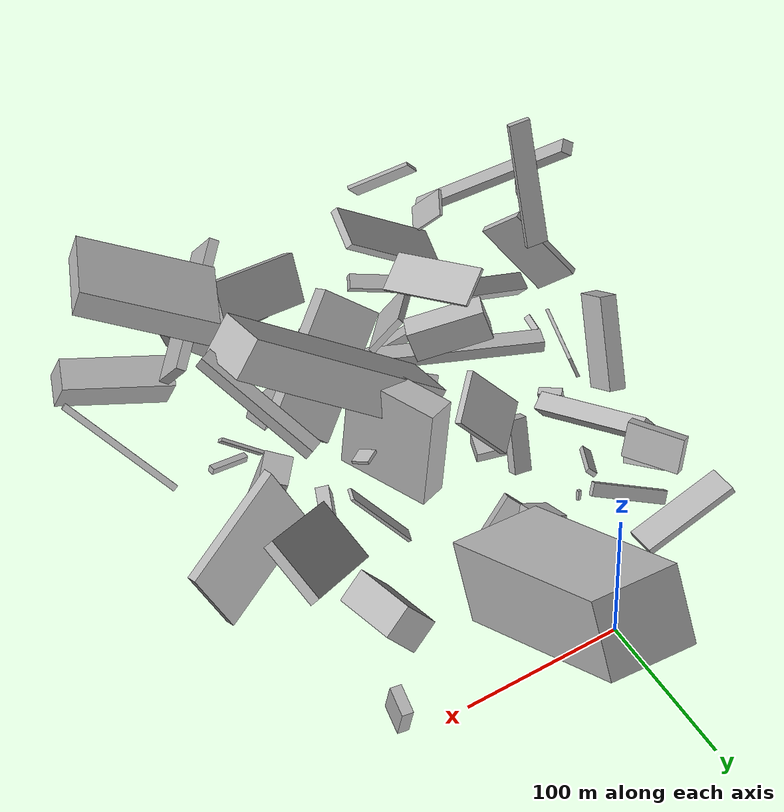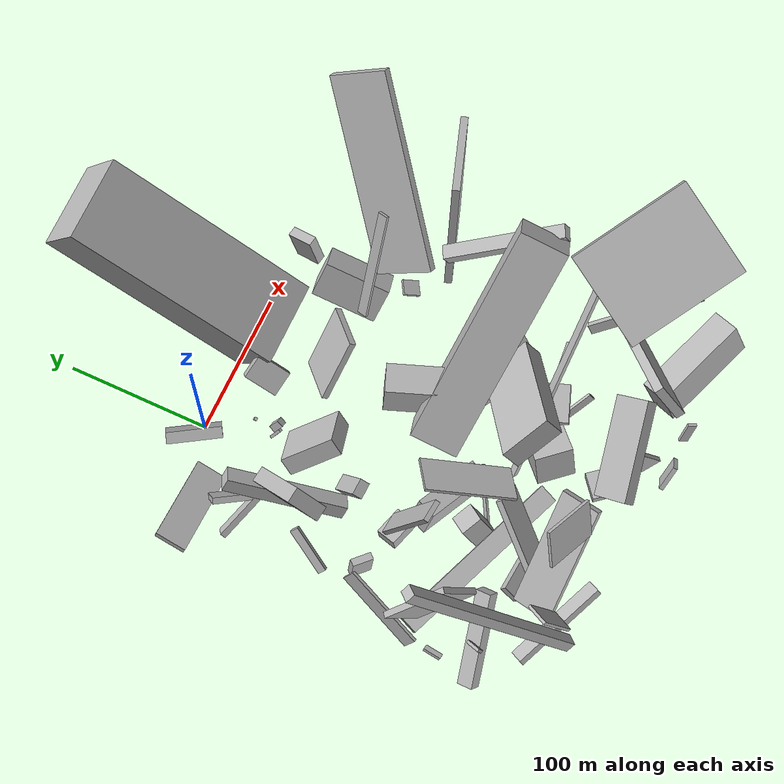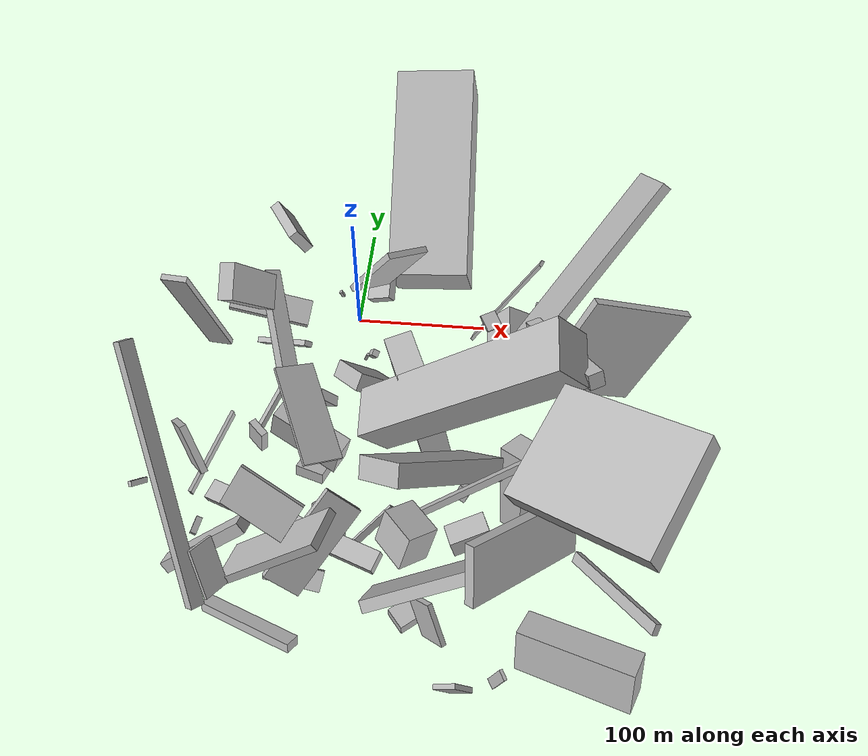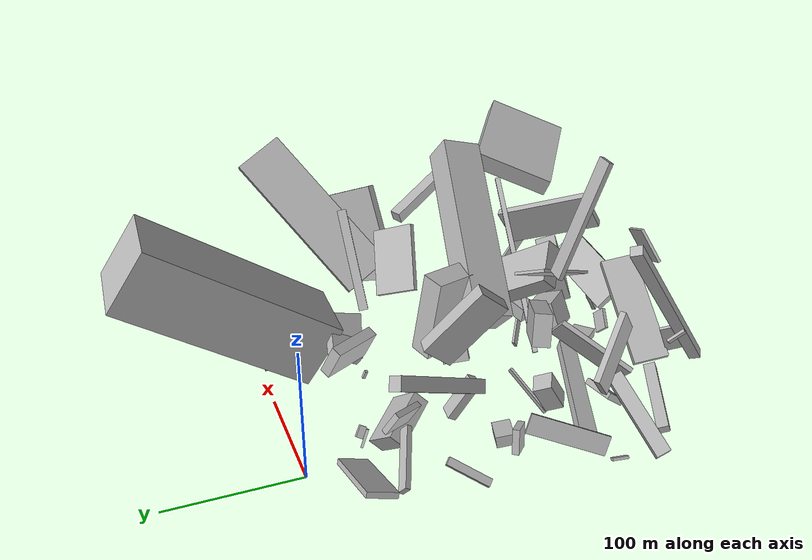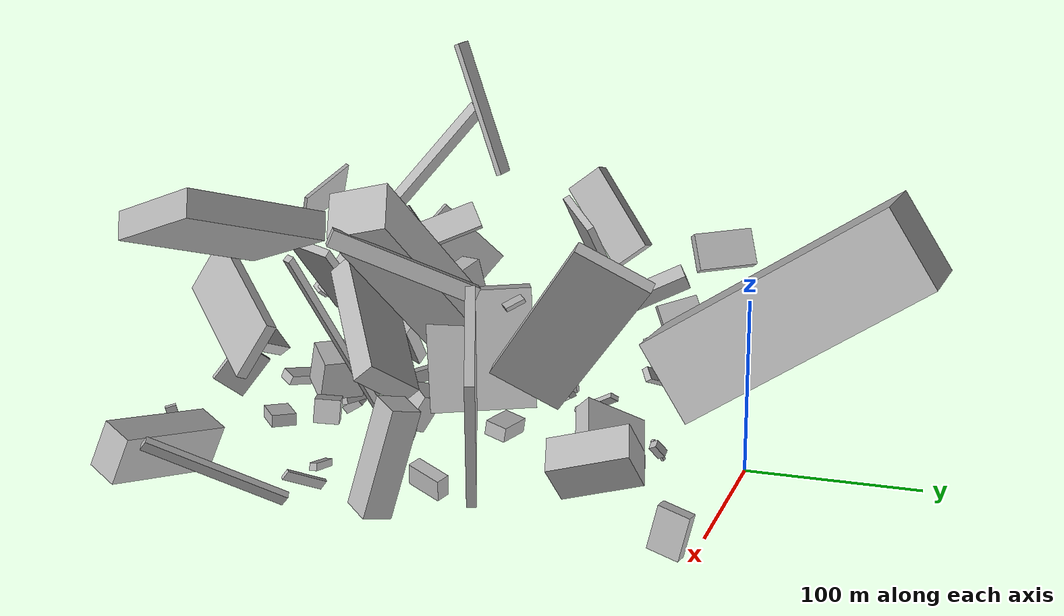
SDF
<sdf version="1.6">
 <world name="default">
  <model name="building_1">
   <static>0</static>
   <pose>-5.42810275641664 -239.7220187616653 85.97157220256467 1.3218992795124298 0.7941853755900098 -0.3940899181862939</pose>
   <link name="link">
    <gravity>0</gravity>
    <pose>0 0 13.0 0 0 0</pose>
    <collision name="collision"><geometry><box><size>5 81 26</size></box></geometry></collision>
    <visual name="visual">
     <cast_shadows>0</cast_shadows>
     <geometry><box><size>5 81 26</size></box></geometry>
     <material>
      <script>
       <uri>model://HANNAS_wall/materials/scripts</uri>
       <uri>model://HANNAS_wall/materials/textures</uri>
       <name>vrc/HANNAS_wall</name>
      </script>
     </material>
    </visual>
   </link>
  </model>
  <model name="building_9">
   <static>0</static>
   <pose>33.84589902313799 -151.89104089429046 75.68004075260461 0.3471192922953467 0.7987878249270718 0.28971736532921855</pose>
   <link name="link">
    <gravity>0</gravity>
    <pose>0 0 75.0 0 0 0</pose>
    <collision name="collision"><geometry><box><size>26 32 150</size></box></geometry></collision>
    <visual name="visual">
     <cast_shadows>0</cast_shadows>
     <geometry><box><size>26 32 150</size></box></geometry>
     <material>
      <script>
       <uri>model://HANNAS_wall/materials/scripts</uri>
       <uri>model://HANNAS_wall/materials/textures</uri>
       <name>vrc/HANNAS_wall</name>
      </script>
     </material>
    </visual>
   </link>
  </model>
  <model name="building_10">
   <static>0</static>
   <pose>166.26630641491323 -104.6556512947187 59.05843683317994 -0.4021579293587372 0.0015538447184594562 -1.2440121882095712</pose>
   <link name="link">
    <gravity>0</gravity>
    <pose>0 0 39.5 0 0 0</pose>
    <collision name="collision"><geometry><box><size>5 73 79</size></box></geometry></collision>
    <visual name="visual">
     <cast_shadows>0</cast_shadows>
     <geometry><box><size>5 73 79</size></box></geometry>
     <material>
      <script>
       <uri>model://HANNAS_wall/materials/scripts</uri>
       <uri>model://HANNAS_wall/materials/textures</uri>
       <name>vrc/HANNAS_wall</name>
      </script>
     </material>
    </visual>
   </link>
  </model>
  <model name="building_17">
   <static>0</static>
   <pose>59.295247222532026 -27.041184664306968 75.38466579360201 0.14372766113227464 -0.9816911505070811 -1.706182812326678</pose>
   <link name="link">
    <gravity>0</gravity>
    <pose>0 0 75.0 0 0 0</pose>
    <collision name="collision"><geometry><box><size>48 55 150</size></box></geometry></collision>
    <visual name="visual">
     <cast_shadows>0</cast_shadows>
     <geometry><box><size>48 55 150</size></box></geometry>
     <material>
      <script>
       <uri>model://HANNAS_wall/materials/scripts</uri>
       <uri>model://HANNAS_wall/materials/textures</uri>
       <name>vrc/HANNAS_wall</name>
      </script>
     </material>
    </visual>
   </link>
  </model>
  <model name="building_22">
   <static>0</static>
   <pose>165.29780434071338 -273.25493520363113 38.56952976451891 0.4997085359125602 1.1886435750374411 -1.4784130958595931</pose>
   <link name="link">
    <gravity>0</gravity>
    <pose>0 0 9.5 0 0 0</pose>
    <collision name="collision"><geometry><box><size>27 67 19</size></box></geometry></collision>
    <visual name="visual">
     <cast_shadows>0</cast_shadows>
     <geometry><box><size>27 67 19</size></box></geometry>
     <material>
      <script>
       <uri>model://HANNAS_wall/materials/scripts</uri>
       <uri>model://HANNAS_wall/materials/textures</uri>
       <name>vrc/HANNAS_wall</name>
      </script>
     </material>
    </visual>
   </link>
  </model>
  <model name="building_23">
   <static>0</static>
   <pose>93.50293925595642 -206.23690654008107 89.42540538922523 2.253204658741233 0.19887257419578286 1.2426885917443982</pose>
   <link name="link">
    <gravity>0</gravity>
    <pose>0 0 2.0 0 0 0</pose>
    <collision name="collision"><geometry><box><size>4 150 4</size></box></geometry></collision>
    <visual name="visual">
     <cast_shadows>0</cast_shadows>
     <geometry><box><size>4 150 4</size></box></geometry>
     <material>
      <script>
       <uri>model://HANNAS_wall/materials/scripts</uri>
       <uri>model://HANNAS_wall/materials/textures</uri>
       <name>vrc/HANNAS_wall</name>
      </script>
     </material>
    </visual>
   </link>
  </model>
  <model name="building_30">
   <static>0</static>
   <pose>-51.628188610088806 -85.52173993928845 135.2359919907667 -2.8149377950367485 -0.8573168729308654 -1.9750568537472974</pose>
   <link name="link">
    <gravity>0</gravity>
    <pose>0 0 11.5 0 0 0</pose>
    <collision name="collision"><geometry><box><size>54 10 23</size></box></geometry></collision>
    <visual name="visual">
     <cast_shadows>0</cast_shadows>
     <geometry><box><size>54 10 23</size></box></geometry>
     <material>
      <script>
       <uri>model://HANNAS_wall/materials/scripts</uri>
       <uri>model://HANNAS_wall/materials/textures</uri>
       <name>vrc/HANNAS_wall</name>
      </script>
     </material>
    </visual>
   </link>
  </model>
  <model name="building_41">
   <static>0</static>
   <pose>-16.573700804806165 -211.18111668127642 28.42816205441622 -0.2508484192820783 1.3294683724410303 0.9418321327773401</pose>
   <link name="link">
    <gravity>0</gravity>
    <pose>0 0 6.5 0 0 0</pose>
    <collision name="collision"><geometry><box><size>7 124 13</size></box></geometry></collision>
    <visual name="visual">
     <cast_shadows>0</cast_shadows>
     <geometry><box><size>7 124 13</size></box></geometry>
     <material>
      <script>
       <uri>model://HANNAS_wall/materials/scripts</uri>
       <uri>model://HANNAS_wall/materials/textures</uri>
       <name>vrc/HANNAS_wall</name>
      </script>
     </material>
    </visual>
   </link>
  </model>
  <model name="building_44">
   <static>0</static>
   <pose>65.28228357495722 -133.36924564193194 45.98189960271765 -0.17454358389254931 -0.036807849850491584 1.942890977357294</pose>
   <link name="link">
    <gravity>0</gravity>
    <pose>0 0 33.0 0 0 0</pose>
    <collision name="collision"><geometry><box><size>58 18 66</size></box></geometry></collision>
    <visual name="visual">
     <cast_shadows>0</cast_shadows>
     <geometry><box><size>58 18 66</size></box></geometry>
     <material>
      <script>
       <uri>model://HANNAS_wall/materials/scripts</uri>
       <uri>model://HANNAS_wall/materials/textures</uri>
       <name>vrc/HANNAS_wall</name>
      </script>
     </material>
    </visual>
   </link>
  </model>
  <model name="building_51">
   <static>0</static>
   <pose>-62.80150090943144 -35.108215530397416 35.73823834480329 1.2864220787834153 -0.27170431004789664 -3.119014227257547</pose>
   <link name="link">
    <gravity>0</gravity>
    <pose>0 0 10.5 0 0 0</pose>
    <collision name="collision"><geometry><box><size>60 4 21</size></box></geometry></collision>
    <visual name="visual">
     <cast_shadows>0</cast_shadows>
     <geometry><box><size>60 4 21</size></box></geometry>
     <material>
      <script>
       <uri>model://HANNAS_wall/materials/scripts</uri>
       <uri>model://HANNAS_wall/materials/textures</uri>
       <name>vrc/HANNAS_wall</name>
      </script>
     </material>
    </visual>
   </link>
  </model>
  <model name="building_53">
   <static>0</static>
   <pose>134.84612491259455 -160.10815783810872 34.6635390487251 1.4158742561633624 -0.22493966590599784 -0.703948774160974</pose>
   <link name="link">
    <gravity>0</gravity>
    <pose>0 0 9.5 0 0 0</pose>
    <collision name="collision"><geometry><box><size>17 63 19</size></box></geometry></collision>
    <visual name="visual">
     <cast_shadows>0</cast_shadows>
     <geometry><box><size>17 63 19</size></box></geometry>
     <material>
      <script>
       <uri>model://HANNAS_wall/materials/scripts</uri>
       <uri>model://HANNAS_wall/materials/textures</uri>
       <name>vrc/HANNAS_wall</name>
      </script>
     </material>
    </visual>
   </link>
  </model>
  <model name="building_59">
   <static>0</static>
   <pose>-46.795529385791674 -58.26615661997201 32.13460712737607 0.6069768328617062 -0.8266439071850114 -2.428429025390064</pose>
   <link name="link">
    <gravity>0</gravity>
    <pose>0 0 2.0 0 0 0</pose>
    <collision name="collision"><geometry><box><size>8 47 4</size></box></geometry></collision>
    <visual name="visual">
     <cast_shadows>0</cast_shadows>
     <geometry><box><size>8 47 4</size></box></geometry>
     <material>
      <script>
       <uri>model://HANNAS_wall/materials/scripts</uri>
       <uri>model://HANNAS_wall/materials/textures</uri>
       <name>vrc/HANNAS_wall</name>
      </script>
     </material>
    </visual>
   </link>
  </model>
  <model name="building_60">
   <static>0</static>
   <pose>-55.246284490398345 -52.67597682796404 70.52888772277947 1.0408543811598965 -0.18750298344435254 2.1800897783020736</pose>
   <link name="link">
    <gravity>0</gravity>
    <pose>0 0 2.0 0 0 0</pose>
    <collision name="collision"><geometry><box><size>25 17 4</size></box></geometry></collision>
    <visual name="visual">
     <cast_shadows>0</cast_shadows>
     <geometry><box><size>25 17 4</size></box></geometry>
     <material>
      <script>
       <uri>model://HANNAS_wall/materials/scripts</uri>
       <uri>model://HANNAS_wall/materials/textures</uri>
       <name>vrc/HANNAS_wall</name>
      </script>
     </material>
    </visual>
   </link>
  </model>
  <model name="building_63">
   <static>0</static>
   <pose>129.72382476370478 -216.8122920937503 152.89608224947602 -1.2462023191349325 0.36279655640454006 -2.060488606820153</pose>
   <link name="link">
    <gravity>0</gravity>
    <pose>0 0 40.5 0 0 0</pose>
    <collision name="collision"><geometry><box><size>65 15 81</size></box></geometry></collision>
    <visual name="visual">
     <cast_shadows>0</cast_shadows>
     <geometry><box><size>65 15 81</size></box></geometry>
     <material>
      <script>
       <uri>model://HANNAS_wall/materials/scripts</uri>
       <uri>model://HANNAS_wall/materials/textures</uri>
       <name>vrc/HANNAS_wall</name>
      </script>
     </material>
    </visual>
   </link>
  </model>
  <model name="building_68">
   <static>0</static>
   <pose>133.68899683344443 -201.15921752342024 28.12577484494996 0.25896905218363564 0.0042694306786999646 -1.496652786326828</pose>
   <link name="link">
    <gravity>0</gravity>
    <pose>0 0 2.0 0 0 0</pose>
    <collision name="collision"><geometry><box><size>4 25 4</size></box></geometry></collision>
    <visual name="visual">
     <cast_shadows>0</cast_shadows>
     <geometry><box><size>4 25 4</size></box></geometry>
     <material>
      <script>
       <uri>model://HANNAS_wall/materials/scripts</uri>
       <uri>model://HANNAS_wall/materials/textures</uri>
       <name>vrc/HANNAS_wall</name>
      </script>
     </material>
    </visual>
   </link>
  </model>
  <model name="building_74">
   <static>0</static>
   <pose>5.640465864170977 -228.60789635987018 51.6064259739527 2.228034573761285 0.5392966152699268 -2.2523121590061224</pose>
   <link name="link">
    <gravity>0</gravity>
    <pose>0 0 2.0 0 0 0</pose>
    <collision name="collision"><geometry><box><size>63 26 4</size></box></geometry></collision>
    <visual name="visual">
     <cast_shadows>0</cast_shadows>
     <geometry><box><size>63 26 4</size></box></geometry>
     <material>
      <script>
       <uri>model://HANNAS_wall/materials/scripts</uri>
       <uri>model://HANNAS_wall/materials/textures</uri>
       <name>vrc/HANNAS_wall</name>
      </script>
     </material>
    </visual>
   </link>
  </model>
  <model name="building_77">
   <static>0</static>
   <pose>-71.95500102650558 -236.8877465087458 124.16990555256365 -2.0856577003965104 0.8538065257584017 -1.15359892929485</pose>
   <link name="link">
    <gravity>0</gravity>
    <pose>0 0 4.0 0 0 0</pose>
    <collision name="collision"><geometry><box><size>150 7 8</size></box></geometry></collision>
    <visual name="visual">
     <cast_shadows>0</cast_shadows>
     <geometry><box><size>150 7 8</size></box></geometry>
     <material>
      <script>
       <uri>model://HANNAS_wall/materials/scripts</uri>
       <uri>model://HANNAS_wall/materials/textures</uri>
       <name>vrc/HANNAS_wall</name>
      </script>
     </material>
    </visual>
   </link>
  </model>
  <model name="building_83">
   <static>0</static>
   <pose>144.37211664484997 -8.852210711497163 19.963995743885146 -1.6201742115327749 -1.3308006144434115 1.4523889853108385</pose>
   <link name="link">
    <gravity>0</gravity>
    <pose>0 0 3.5 0 0 0</pose>
    <collision name="collision"><geometry><box><size>25 18 7</size></box></geometry></collision>
    <visual name="visual">
     <cast_shadows>0</cast_shadows>
     <geometry><box><size>25 18 7</size></box></geometry>
     <material>
      <script>
       <uri>model://HANNAS_wall/materials/scripts</uri>
       <uri>model://HANNAS_wall/materials/textures</uri>
       <name>vrc/HANNAS_wall</name>
      </script>
     </material>
    </visual>
   </link>
  </model>
  <model name="building_84">
   <static>0</static>
   <pose>167.56915446579004 -72.87925936802202 137.47755380984043 -2.2625887857645353 -0.7304349838267488 0.7323418659169579</pose>
   <link name="link">
    <gravity>0</gravity>
    <pose>0 0 20.0 0 0 0</pose>
    <collision name="collision"><geometry><box><size>134 6 40</size></box></geometry></collision>
    <visual name="visual">
     <cast_shadows>0</cast_shadows>
     <geometry><box><size>134 6 40</size></box></geometry>
     <material>
      <script>
       <uri>model://HANNAS_wall/materials/scripts</uri>
       <uri>model://HANNAS_wall/materials/textures</uri>
       <name>vrc/HANNAS_wall</name>
      </script>
     </material>
    </visual>
   </link>
  </model>
  <model name="building_87">
   <static>0</static>
   <pose>52.7240470971118 -227.20085016604116 61.086982777157814 -1.9218601484160864 -0.03413095259586417 -0.8572102128023299</pose>
   <link name="link">
    <gravity>0</gravity>
    <pose>0 0 10.5 0 0 0</pose>
    <collision name="collision"><geometry><box><size>25 25 21</size></box></geometry></collision>
    <visual name="visual">
     <cast_shadows>0</cast_shadows>
     <geometry><box><size>25 25 21</size></box></geometry>
     <material>
      <script>
       <uri>model://HANNAS_wall/materials/scripts</uri>
       <uri>model://HANNAS_wall/materials/textures</uri>
       <name>vrc/HANNAS_wall</name>
      </script>
     </material>
    </visual>
   </link>
  </model>
  <model name="building_93">
   <static>0</static>
   <pose>23.464314734465308 -77.12757741077758 118.98054540045162 0.40598590807766927 -0.49052541676882766 2.12676835691638</pose>
   <link name="link">
    <gravity>0</gravity>
    <pose>0 0 23.0 0 0 0</pose>
    <collision name="collision"><geometry><box><size>4 31 46</size></box></geometry></collision>
    <visual name="visual">
     <cast_shadows>0</cast_shadows>
     <geometry><box><size>4 31 46</size></box></geometry>
     <material>
      <script>
       <uri>model://HANNAS_wall/materials/scripts</uri>
       <uri>model://HANNAS_wall/materials/textures</uri>
       <name>vrc/HANNAS_wall</name>
      </script>
     </material>
    </visual>
   </link>
  </model>
  <model name="building_98">
   <static>0</static>
   <pose>110.47869796093084 -56.34746817158542 49.34578033671849 2.179394420632986 -0.26269679675054514 1.6451453191750272</pose>
   <link name="link">
    <gravity>0</gravity>
    <pose>0 0 10.5 0 0 0</pose>
    <collision name="collision"><geometry><box><size>45 26 21</size></box></geometry></collision>
    <visual name="visual">
     <cast_shadows>0</cast_shadows>
     <geometry><box><size>45 26 21</size></box></geometry>
     <material>
      <script>
       <uri>model://HANNAS_wall/materials/scripts</uri>
       <uri>model://HANNAS_wall/materials/textures</uri>
       <name>vrc/HANNAS_wall</name>
      </script>
     </material>
    </visual>
   </link>
  </model>
  <model name="building_101">
   <static>0</static>
   <pose>95.0139971917725 -205.25637472967003 46.90316336103717 1.472308586646145 -0.23810599112206576 0.35837256414539526</pose>
   <link name="link">
    <gravity>0</gravity>
    <pose>0 0 7.0 0 0 0</pose>
    <collision name="collision"><geometry><box><size>25 13 14</size></box></geometry></collision>
    <visual name="visual">
     <cast_shadows>0</cast_shadows>
     <geometry><box><size>25 13 14</size></box></geometry>
     <material>
      <script>
       <uri>model://HANNAS_wall/materials/scripts</uri>
       <uri>model://HANNAS_wall/materials/textures</uri>
       <name>vrc/HANNAS_wall</name>
      </script>
     </material>
    </visual>
   </link>
  </model>
  <model name="building_102">
   <static>0</static>
   <pose>73.6452524552631 -187.98999623571717 92.17129389709018 -2.4474620504610898 -0.5422564809757422 -2.5794935849217717</pose>
   <link name="link">
    <gravity>0</gravity>
    <pose>0 0 7.0 0 0 0</pose>
    <collision name="collision"><geometry><box><size>80 36 14</size></box></geometry></collision>
    <visual name="visual">
     <cast_shadows>0</cast_shadows>
     <geometry><box><size>80 36 14</size></box></geometry>
     <material>
      <script>
       <uri>model://HANNAS_wall/materials/scripts</uri>
       <uri>model://HANNAS_wall/materials/textures</uri>
       <name>vrc/HANNAS_wall</name>
      </script>
     </material>
    </visual>
   </link>
  </model>
  <model name="building_110">
   <static>0</static>
   <pose>-62.884734842943516 -202.9301692621457 85.78287365966777 0.7787649702892605 0.03861047882581604 -2.496929398252908</pose>
   <link name="link">
    <gravity>0</gravity>
    <pose>0 0 14.5 0 0 0</pose>
    <collision name="collision"><geometry><box><size>4 50 29</size></box></geometry></collision>
    <visual name="visual">
     <cast_shadows>0</cast_shadows>
     <geometry><box><size>4 50 29</size></box></geometry>
     <material>
      <script>
       <uri>model://HANNAS_wall/materials/scripts</uri>
       <uri>model://HANNAS_wall/materials/textures</uri>
       <name>vrc/HANNAS_wall</name>
      </script>
     </material>
    </visual>
   </link>
  </model>
  <model name="building_113">
   <static>0</static>
   <pose>3.1911797071757046 -78.28427346795529 26.660849612072262 2.2844929568061874 0.4877137139233096 2.237884223654354</pose>
   <link name="link">
    <gravity>0</gravity>
    <pose>0 0 16.5 0 0 0</pose>
    <collision name="collision"><geometry><box><size>39 13 33</size></box></geometry></collision>
    <visual name="visual">
     <cast_shadows>0</cast_shadows>
     <geometry><box><size>39 13 33</size></box></geometry>
     <material>
      <script>
       <uri>model://HANNAS_wall/materials/scripts</uri>
       <uri>model://HANNAS_wall/materials/textures</uri>
       <name>vrc/HANNAS_wall</name>
      </script>
     </material>
    </visual>
   </link>
  </model>
  <model name="building_119">
   <static>0</static>
   <pose>71.20548577797219 -266.8570301855303 51.77609415886789 0.16549463876541015 -0.886243001978945 2.1563493579585136</pose>
   <link name="link">
    <gravity>0</gravity>
    <pose>0 0 10.5 0 0 0</pose>
    <collision name="collision"><geometry><box><size>26 3 21</size></box></geometry></collision>
    <visual name="visual">
     <cast_shadows>0</cast_shadows>
     <geometry><box><size>26 3 21</size></box></geometry>
     <material>
      <script>
       <uri>model://HANNAS_wall/materials/scripts</uri>
       <uri>model://HANNAS_wall/materials/textures</uri>
       <name>vrc/HANNAS_wall</name>
      </script>
     </material>
    </visual>
   </link>
  </model>
  <model name="building_120">
   <static>0</static>
   <pose>-35.4767409993452 -21.88669397461938 118.95887596704316 2.063052197227466 0.03736115995046306 -1.0019911438856715</pose>
   <link name="link">
    <gravity>0</gravity>
    <pose>0 0 3.5 0 0 0</pose>
    <collision name="collision"><geometry><box><size>34 21 7</size></box></geometry></collision>
    <visual name="visual">
     <cast_shadows>0</cast_shadows>
     <geometry><box><size>34 21 7</size></box></geometry>
     <material>
      <script>
       <uri>model://HANNAS_wall/materials/scripts</uri>
       <uri>model://HANNAS_wall/materials/textures</uri>
       <name>vrc/HANNAS_wall</name>
      </script>
     </material>
    </visual>
   </link>
  </model>
  <model name="building_125">
   <static>0</static>
   <pose>-79.03364102276352 -202.82611604069527 14.708998557894747 -0.017583769324638863 -0.4742587150122136 3.0297746661720493</pose>
   <link name="link">
    <gravity>0</gravity>
    <pose>0 0 1.0 0 0 0</pose>
    <collision name="collision"><geometry><box><size>4 12 2</size></box></geometry></collision>
    <visual name="visual">
     <cast_shadows>0</cast_shadows>
     <geometry><box><size>4 12 2</size></box></geometry>
     <material>
      <script>
       <uri>model://HANNAS_wall/materials/scripts</uri>
       <uri>model://HANNAS_wall/materials/textures</uri>
       <name>vrc/HANNAS_wall</name>
      </script>
     </material>
    </visual>
   </link>
  </model>
  <model name="building_137">
   <static>0</static>
   <pose>-51.30373711653689 -101.6773520085122 12.833466395228587 2.4752767424186795 -0.5062296733834237 1.0848420440262967</pose>
   <link name="link">
    <gravity>0</gravity>
    <pose>0 0 1.5 0 0 0</pose>
    <collision name="collision"><geometry><box><size>34 6 3</size></box></geometry></collision>
    <visual name="visual">
     <cast_shadows>0</cast_shadows>
     <geometry><box><size>34 6 3</size></box></geometry>
     <material>
      <script>
       <uri>model://HANNAS_wall/materials/scripts</uri>
       <uri>model://HANNAS_wall/materials/textures</uri>
       <name>vrc/HANNAS_wall</name>
      </script>
     </material>
    </visual>
   </link>
  </model>
  <model name="building_139">
   <static>0</static>
   <pose>113.18383384300688 -69.33695626970722 105.78841620836005 1.1462416904853445 -1.0455821903718028 0.0795297956758411</pose>
   <link name="link">
    <gravity>0</gravity>
    <pose>0 0 3.5 0 0 0</pose>
    <collision name="collision"><geometry><box><size>80 2 7</size></box></geometry></collision>
    <visual name="visual">
     <cast_shadows>0</cast_shadows>
     <geometry><box><size>80 2 7</size></box></geometry>
     <material>
      <script>
       <uri>model://HANNAS_wall/materials/scripts</uri>
       <uri>model://HANNAS_wall/materials/textures</uri>
       <name>vrc/HANNAS_wall</name>
      </script>
     </material>
    </visual>
   </link>
  </model>
  <model name="building_140">
   <static>0</static>
   <pose>91.65995820931056 -164.26578990490063 15.10624876805414 -2.3407394327166706 -1.271468066986552 0.33163824590943847</pose>
   <link name="link">
    <gravity>0</gravity>
    <pose>0 0 11.0 0 0 0</pose>
    <collision name="collision"><geometry><box><size>13 8 22</size></box></geometry></collision>
    <visual name="visual">
     <cast_shadows>0</cast_shadows>
     <geometry><box><size>13 8 22</size></box></geometry>
     <material>
      <script>
       <uri>model://HANNAS_wall/materials/scripts</uri>
       <uri>model://HANNAS_wall/materials/textures</uri>
       <name>vrc/HANNAS_wall</name>
      </script>
     </material>
    </visual>
   </link>
  </model>
  <model name="building_151">
   <static>0</static>
   <pose>112.96782582462029 -222.18430268524716 8.924937651323162 0.45520375001012364 0.4518623756434293 2.556347193078538</pose>
   <link name="link">
    <gravity>0</gravity>
    <pose>0 0 3.0 0 0 0</pose>
    <collision name="collision"><geometry><box><size>27 2 6</size></box></geometry></collision>
    <visual name="visual">
     <cast_shadows>0</cast_shadows>
     <geometry><box><size>27 2 6</size></box></geometry>
     <material>
      <script>
       <uri>model://HANNAS_wall/materials/scripts</uri>
       <uri>model://HANNAS_wall/materials/textures</uri>
       <name>vrc/HANNAS_wall</name>
      </script>
     </material>
    </visual>
   </link>
  </model>
  <model name="building_152">
   <static>0</static>
   <pose>57.32419325734115 -261.65727671269536 27.727624956822837 1.7058586480188267 -1.530525621022715 2.1159217657223732</pose>
   <link name="link">
    <gravity>0</gravity>
    <pose>0 0 9.0 0 0 0</pose>
    <collision name="collision"><geometry><box><size>7 14 18</size></box></geometry></collision>
    <visual name="visual">
     <cast_shadows>0</cast_shadows>
     <geometry><box><size>7 14 18</size></box></geometry>
     <material>
      <script>
       <uri>model://HANNAS_wall/materials/scripts</uri>
       <uri>model://HANNAS_wall/materials/textures</uri>
       <name>vrc/HANNAS_wall</name>
      </script>
     </material>
    </visual>
   </link>
  </model>
  <model name="building_159">
   <static>0</static>
   <pose>0.7849102512367025 -190.45528164648903 17.485392914943755 -0.9286388894068132 1.0336901705707568 -1.5107233668964466</pose>
   <link name="link">
    <gravity>0</gravity>
    <pose>0 0 7.5 0 0 0</pose>
    <collision name="collision"><geometry><box><size>25 15 15</size></box></geometry></collision>
    <visual name="visual">
     <cast_shadows>0</cast_shadows>
     <geometry><box><size>25 15 15</size></box></geometry>
     <material>
      <script>
       <uri>model://HANNAS_wall/materials/scripts</uri>
       <uri>model://HANNAS_wall/materials/textures</uri>
       <name>vrc/HANNAS_wall</name>
      </script>
     </material>
    </visual>
   </link>
  </model>
  <model name="building_161">
   <static>0</static>
   <pose>87.31181330131997 -292.0960000856763 11.864313275976764 0.3399909632802369 0.7445262013685648 0.22007200649821676</pose>
   <link name="link">
    <gravity>0</gravity>
    <pose>0 0 9.0 0 0 0</pose>
    <collision name="collision"><geometry><box><size>14 3 18</size></box></geometry></collision>
    <visual name="visual">
     <cast_shadows>0</cast_shadows>
     <geometry><box><size>14 3 18</size></box></geometry>
     <material>
      <script>
       <uri>model://HANNAS_wall/materials/scripts</uri>
       <uri>model://HANNAS_wall/materials/textures</uri>
       <name>vrc/HANNAS_wall</name>
      </script>
     </material>
    </visual>
   </link>
  </model>
  <model name="building_164">
   <static>0</static>
   <pose>-13.914974975264442 -153.2213789792841 7.5650221605251495 3.0043612939784397 1.3884013445950212 -2.002852692495179</pose>
   <link name="link">
    <gravity>0</gravity>
    <pose>0 0 7.0 0 0 0</pose>
    <collision name="collision"><geometry><box><size>9 20 14</size></box></geometry></collision>
    <visual name="visual">
     <cast_shadows>0</cast_shadows>
     <geometry><box><size>9 20 14</size></box></geometry>
     <material>
      <script>
       <uri>model://HANNAS_wall/materials/scripts</uri>
       <uri>model://HANNAS_wall/materials/textures</uri>
       <name>vrc/HANNAS_wall</name>
      </script>
     </material>
    </visual>
   </link>
  </model>
  <model name="building_166">
   <static>0</static>
   <pose>142.24901966568115 -146.72929649443196 150.89202658312968 -3.0366622734129494 -0.42255069737565076 -1.1453027639023994</pose>
   <link name="link">
    <gravity>0</gravity>
    <pose>0 0 4.5 0 0 0</pose>
    <collision name="collision"><geometry><box><size>80 9 9</size></box></geometry></collision>
    <visual name="visual">
     <cast_shadows>0</cast_shadows>
     <geometry><box><size>80 9 9</size></box></geometry>
     <material>
      <script>
       <uri>model://HANNAS_wall/materials/scripts</uri>
       <uri>model://HANNAS_wall/materials/textures</uri>
       <name>vrc/HANNAS_wall</name>
      </script>
     </material>
    </visual>
   </link>
  </model>
  <model name="building_172">
   <static>0</static>
   <pose>-2.3462186274878407 -45.236749400997525 75.21233431217124 -0.7801943189805984 1.1947470687987825 0.8587341475107559</pose>
   <link name="link">
    <gravity>0</gravity>
    <pose>0 0 1.0 0 0 0</pose>
    <collision name="collision"><geometry><box><size>6 2 2</size></box></geometry></collision>
    <visual name="visual">
     <cast_shadows>0</cast_shadows>
     <geometry><box><size>6 2 2</size></box></geometry>
     <material>
      <script>
       <uri>model://HANNAS_wall/materials/scripts</uri>
       <uri>model://HANNAS_wall/materials/textures</uri>
       <name>vrc/HANNAS_wall</name>
      </script>
     </material>
    </visual>
   </link>
  </model>
  <model name="building_187">
   <static>0</static>
   <pose>-85.65681169835972 -229.8015682131578 111.09152507547475 2.6413854294612213 0.7185020611932809 1.115664771772708</pose>
   <link name="link">
    <gravity>0</gravity>
    <pose>0 0 1.5 0 0 0</pose>
    <collision name="collision"><geometry><box><size>13 2 3</size></box></geometry></collision>
    <visual name="visual">
     <cast_shadows>0</cast_shadows>
     <geometry><box><size>13 2 3</size></box></geometry>
     <material>
      <script>
       <uri>model://HANNAS_wall/materials/scripts</uri>
       <uri>model://HANNAS_wall/materials/textures</uri>
       <name>vrc/HANNAS_wall</name>
      </script>
     </material>
    </visual>
   </link>
  </model>
  <model name="building_188">
   <static>0</static>
   <pose>-4.352215834909888 -174.92483720903803 76.31708219020092 -0.0502397943309682 -0.26718032135075304 2.733273614458985</pose>
   <link name="link">
    <gravity>0</gravity>
    <pose>0 0 12.0 0 0 0</pose>
    <collision name="collision"><geometry><box><size>46 13 24</size></box></geometry></collision>
    <visual name="visual">
     <cast_shadows>0</cast_shadows>
     <geometry><box><size>46 13 24</size></box></geometry>
     <material>
      <script>
       <uri>model://HANNAS_wall/materials/scripts</uri>
       <uri>model://HANNAS_wall/materials/textures</uri>
       <name>vrc/HANNAS_wall</name>
      </script>
     </material>
    </visual>
   </link>
  </model>
  <model name="building_192">
   <static>0</static>
   <pose>-62.582375565249635 -220.8698594716333 33.8260263338353 0.9522291430728305 0.7869063964068057 -0.5705006866932857</pose>
   <link name="link">
    <gravity>0</gravity>
    <pose>0 0 5.5 0 0 0</pose>
    <collision name="collision"><geometry><box><size>8 64 11</size></box></geometry></collision>
    <visual name="visual">
     <cast_shadows>0</cast_shadows>
     <geometry><box><size>8 64 11</size></box></geometry>
     <material>
      <script>
       <uri>model://HANNAS_wall/materials/scripts</uri>
       <uri>model://HANNAS_wall/materials/textures</uri>
       <name>vrc/HANNAS_wall</name>
      </script>
     </material>
    </visual>
   </link>
  </model>
  <model name="building_193">
   <static>0</static>
   <pose>116.69549046759869 -295.0436089163625 39.416458403224084 2.282571837369546 1.2676190234117 2.8217484741365717</pose>
   <link name="link">
    <gravity>0</gravity>
    <pose>0 0 1.0 0 0 0</pose>
    <collision name="collision"><geometry><box><size>19 6 2</size></box></geometry></collision>
    <visual name="visual">
     <cast_shadows>0</cast_shadows>
     <geometry><box><size>19 6 2</size></box></geometry>
     <material>
      <script>
       <uri>model://HANNAS_wall/materials/scripts</uri>
       <uri>model://HANNAS_wall/materials/textures</uri>
       <name>vrc/HANNAS_wall</name>
      </script>
     </material>
    </visual>
   </link>
  </model>
  <model name="building_197">
   <static>0</static>
   <pose>-29.316892517854527 -267.8904571826922 17.516897614245224 0.23139191449698068 -0.3868508294201562 -2.08664572301319</pose>
   <link name="link">
    <gravity>0</gravity>
    <pose>0 0 3.0 0 0 0</pose>
    <collision name="collision"><geometry><box><size>9 67 6</size></box></geometry></collision>
    <visual name="visual">
     <cast_shadows>0</cast_shadows>
     <geometry><box><size>9 67 6</size></box></geometry>
     <material>
      <script>
       <uri>model://HANNAS_wall/materials/scripts</uri>
       <uri>model://HANNAS_wall/materials/textures</uri>
       <name>vrc/HANNAS_wall</name>
      </script>
     </material>
    </visual>
   </link>
  </model>
  <model name="building_199">
   <static>0</static>
   <pose>76.6464239677312 -253.37688457501588 71.44842152924005 -0.45387953812779985 -0.6322549733533392 2.043552144483341</pose>
   <link name="link">
    <gravity>0</gravity>
    <pose>0 0 15.0 0 0 0</pose>
    <collision name="collision"><geometry><box><size>7 65 30</size></box></geometry></collision>
    <visual name="visual">
     <cast_shadows>0</cast_shadows>
     <geometry><box><size>7 65 30</size></box></geometry>
     <material>
      <script>
       <uri>model://HANNAS_wall/materials/scripts</uri>
       <uri>model://HANNAS_wall/materials/textures</uri>
       <name>vrc/HANNAS_wall</name>
      </script>
     </material>
    </visual>
   </link>
  </model>
  <model name="building_203">
   <static>0</static>
   <pose>18.663669034009953 -43.97194297558042 15.287199085851414 -2.285807832276421 0.8661301600864434 2.2301289004178146</pose>
   <link name="link">
    <gravity>0</gravity>
    <pose>0 0 2.5 0 0 0</pose>
    <collision name="collision"><geometry><box><size>9 5 5</size></box></geometry></collision>
    <visual name="visual">
     <cast_shadows>0</cast_shadows>
     <geometry><box><size>9 5 5</size></box></geometry>
     <material>
      <script>
       <uri>model://HANNAS_wall/materials/scripts</uri>
       <uri>model://HANNAS_wall/materials/textures</uri>
       <name>vrc/HANNAS_wall</name>
      </script>
     </material>
    </visual>
   </link>
  </model>
  <model name="building_212">
   <static>0</static>
   <pose>165.094866200403 -207.6016933475742 22.233713063438742 1.0122561731365922 0.5011341701404327 0.2576953490392123</pose>
   <link name="link">
    <gravity>0</gravity>
    <pose>0 0 40.0 0 0 0</pose>
    <collision name="collision"><geometry><box><size>4 7 80</size></box></geometry></collision>
    <visual name="visual">
     <cast_shadows>0</cast_shadows>
     <geometry><box><size>4 7 80</size></box></geometry>
     <material>
      <script>
       <uri>model://HANNAS_wall/materials/scripts</uri>
       <uri>model://HANNAS_wall/materials/textures</uri>
       <name>vrc/HANNAS_wall</name>
      </script>
     </material>
    </visual>
   </link>
  </model>
  <model name="building_213">
   <static>0</static>
   <pose>-74.23218172234283 -160.487856531141 35.675517516865135 0.3572625890206145 0.29705496629675004 -0.24951942904840071</pose>
   <link name="link">
    <gravity>0</gravity>
    <pose>0 0 7.0 0 0 0</pose>
    <collision name="collision"><geometry><box><size>2 58 14</size></box></geometry></collision>
    <visual name="visual">
     <cast_shadows>0</cast_shadows>
     <geometry><box><size>2 58 14</size></box></geometry>
     <material>
      <script>
       <uri>model://HANNAS_wall/materials/scripts</uri>
       <uri>model://HANNAS_wall/materials/textures</uri>
       <name>vrc/HANNAS_wall</name>
      </script>
     </material>
    </visual>
   </link>
  </model>
  <model name="building_218">
   <static>0</static>
   <pose>13.150210711815228 -46.51279407804737 11.942565913297026 -1.8748623616065005 -0.39463864334880566 2.7306420525875406</pose>
   <link name="link">
    <gravity>0</gravity>
    <pose>0 0 1.0 0 0 0</pose>
    <collision name="collision"><geometry><box><size>2 14 2</size></box></geometry></collision>
    <visual name="visual">
     <cast_shadows>0</cast_shadows>
     <geometry><box><size>2 14 2</size></box></geometry>
     <material>
      <script>
       <uri>model://HANNAS_wall/materials/scripts</uri>
       <uri>model://HANNAS_wall/materials/textures</uri>
       <name>vrc/HANNAS_wall</name>
      </script>
     </material>
    </visual>
   </link>
  </model>
  <model name="building_221">
   <static>0</static>
   <pose>18.133959403290834 -37.06967425071355 78.61228345535694 1.1436996181567012 -0.47271611896053645 1.5629715031161653</pose>
   <link name="link">
    <gravity>0</gravity>
    <pose>0 0 8.5 0 0 0</pose>
    <collision name="collision"><geometry><box><size>23 8 17</size></box></geometry></collision>
    <visual name="visual">
     <cast_shadows>0</cast_shadows>
     <geometry><box><size>23 8 17</size></box></geometry>
     <material>
      <script>
       <uri>model://HANNAS_wall/materials/scripts</uri>
       <uri>model://HANNAS_wall/materials/textures</uri>
       <name>vrc/HANNAS_wall</name>
      </script>
     </material>
    </visual>
   </link>
  </model>
  <model name="building_223">
   <static>0</static>
   <pose>2.94074742236023 -187.0662552945801 125.19035379666641 2.7536295233654764 0.35307595212054127 -1.130449566794129</pose>
   <link name="link">
    <gravity>0</gravity>
    <pose>0 0 1.0 0 0 0</pose>
    <collision name="collision"><geometry><box><size>59 24 2</size></box></geometry></collision>
    <visual name="visual">
     <cast_shadows>0</cast_shadows>
     <geometry><box><size>59 24 2</size></box></geometry>
     <material>
      <script>
       <uri>model://HANNAS_wall/materials/scripts</uri>
       <uri>model://HANNAS_wall/materials/textures</uri>
       <name>vrc/HANNAS_wall</name>
      </script>
     </material>
    </visual>
   </link>
  </model>
  <model name="building_224">
   <static>0</static>
   <pose>-8.379333394594969 -110.67940239082378 45.42309662206762 -2.7866218531312286 -1.026246289171879 -1.941551152897321</pose>
   <link name="link">
    <gravity>0</gravity>
    <pose>0 0 3.5 0 0 0</pose>
    <collision name="collision"><geometry><box><size>33 11 7</size></box></geometry></collision>
    <visual name="visual">
     <cast_shadows>0</cast_shadows>
     <geometry><box><size>33 11 7</size></box></geometry>
     <material>
      <script>
       <uri>model://HANNAS_wall/materials/scripts</uri>
       <uri>model://HANNAS_wall/materials/textures</uri>
       <name>vrc/HANNAS_wall</name>
      </script>
     </material>
    </visual>
   </link>
  </model>
  <model name="building_225">
   <static>0</static>
   <pose>-43.86105582530384 -85.81488112155562 81.99531261388607 2.3382264845594434 0.9698034280956126 2.7584415205450585</pose>
   <link name="link">
    <gravity>0</gravity>
    <pose>0 0 5.5 0 0 0</pose>
    <collision name="collision"><geometry><box><size>10 80 11</size></box></geometry></collision>
    <visual name="visual">
     <cast_shadows>0</cast_shadows>
     <geometry><box><size>10 80 11</size></box></geometry>
     <material>
      <script>
       <uri>model://HANNAS_wall/materials/scripts</uri>
       <uri>model://HANNAS_wall/materials/textures</uri>
       <name>vrc/HANNAS_wall</name>
      </script>
     </material>
    </visual>
   </link>
  </model>
  <model name="building_232">
   <static>0</static>
   <pose>127.62512060727725 -254.15446776589903 111.30766941007369 1.9949982679875198 -0.3560651085690008 -2.388062797003131</pose>
   <link name="link">
    <gravity>0</gravity>
    <pose>0 0 3.0 0 0 0</pose>
    <collision name="collision"><geometry><box><size>80 34 6</size></box></geometry></collision>
    <visual name="visual">
     <cast_shadows>0</cast_shadows>
     <geometry><box><size>80 34 6</size></box></geometry>
     <material>
      <script>
       <uri>model://HANNAS_wall/materials/scripts</uri>
       <uri>model://HANNAS_wall/materials/textures</uri>
       <name>vrc/HANNAS_wall</name>
      </script>
     </material>
    </visual>
   </link>
  </model>
  <model name="building_233">
   <static>0</static>
   <pose>8.668673832159882 -261.96044967738476 132.46712486602064 0.9021824495224653 0.9548930874395954 -2.5172965584668727</pose>
   <link name="link">
    <gravity>0</gravity>
    <pose>0 0 18.5 0 0 0</pose>
    <collision name="collision"><geometry><box><size>26 2 37</size></box></geometry></collision>
    <visual name="visual">
     <cast_shadows>0</cast_shadows>
     <geometry><box><size>26 2 37</size></box></geometry>
     <material>
      <script>
       <uri>model://HANNAS_wall/materials/scripts</uri>
       <uri>model://HANNAS_wall/materials/textures</uri>
       <name>vrc/HANNAS_wall</name>
      </script>
     </material>
    </visual>
   </link>
  </model>
  <model name="building_235">
   <static>0</static>
   <pose>98.47966976357259 -105.81623081291849 119.56653683566891 1.500619687933837 1.1334140374698864 2.045930262076594</pose>
   <link name="link">
    <gravity>0</gravity>
    <pose>0 0 5.0 0 0 0</pose>
    <collision name="collision"><geometry><box><size>2 11 10</size></box></geometry></collision>
    <visual name="visual">
     <cast_shadows>0</cast_shadows>
     <geometry><box><size>2 11 10</size></box></geometry>
     <material>
      <script>
       <uri>model://HANNAS_wall/materials/scripts</uri>
       <uri>model://HANNAS_wall/materials/textures</uri>
       <name>vrc/HANNAS_wall</name>
      </script>
     </material>
    </visual>
   </link>
  </model>
  <model name="building_236">
   <static>0</static>
   <pose>-49.28735152006287 -159.44946431377855 150.0095984155374 -0.016355484831070032 -0.34793696509141175 1.4749266890969237</pose>
   <link name="link">
    <gravity>0</gravity>
    <pose>0 0 40.0 0 0 0</pose>
    <collision name="collision"><geometry><box><size>3 13 80</size></box></geometry></collision>
    <visual name="visual">
     <cast_shadows>0</cast_shadows>
     <geometry><box><size>3 13 80</size></box></geometry>
     <material>
      <script>
       <uri>model://HANNAS_wall/materials/scripts</uri>
       <uri>model://HANNAS_wall/materials/textures</uri>
       <name>vrc/HANNAS_wall</name>
      </script>
     </material>
    </visual>
   </link>
  </model>
  <model name="building_237">
   <static>0</static>
   <pose>-25.967687989980423 -232.3596807614276 23.816538981604566 1.825273971439162 -0.5831633522265801 1.3586453212490979</pose>
   <link name="link">
    <gravity>0</gravity>
    <pose>0 0 18.0 0 0 0</pose>
    <collision name="collision"><geometry><box><size>13 5 36</size></box></geometry></collision>
    <visual name="visual">
     <cast_shadows>0</cast_shadows>
     <geometry><box><size>13 5 36</size></box></geometry>
     <material>
      <script>
       <uri>model://HANNAS_wall/materials/scripts</uri>
       <uri>model://HANNAS_wall/materials/textures</uri>
       <name>vrc/HANNAS_wall</name>
      </script>
     </material>
    </visual>
   </link>
  </model>
  <model name="building_239">
   <static>0</static>
   <pose>-54.34948052950197 -134.01876105572018 30.637688457985988 2.756677455066132 -1.431526329843009 -0.3578207549131822</pose>
   <link name="link">
    <gravity>0</gravity>
    <pose>0 0 7.0 0 0 0</pose>
    <collision name="collision"><geometry><box><size>19 5 14</size></box></geometry></collision>
    <visual name="visual">
     <cast_shadows>0</cast_shadows>
     <geometry><box><size>19 5 14</size></box></geometry>
     <material>
      <script>
       <uri>model://HANNAS_wall/materials/scripts</uri>
       <uri>model://HANNAS_wall/materials/textures</uri>
       <name>vrc/HANNAS_wall</name>
      </script>
     </material>
    </visual>
   </link>
  </model>
  <model name="building_241">
   <static>0</static>
   <pose>47.32713376606239 -181.03706638860666 19.837356440006047 2.7003949487993153 0.8156401621620011 -0.020821688693946596</pose>
   <link name="link">
    <gravity>0</gravity>
    <pose>0 0 22.0 0 0 0</pose>
    <collision name="collision"><geometry><box><size>5 2 44</size></box></geometry></collision>
    <visual name="visual">
     <cast_shadows>0</cast_shadows>
     <geometry><box><size>5 2 44</size></box></geometry>
     <material>
      <script>
       <uri>model://HANNAS_wall/materials/scripts</uri>
       <uri>model://HANNAS_wall/materials/textures</uri>
       <name>vrc/HANNAS_wall</name>
      </script>
     </material>
    </visual>
   </link>
  </model>
  <model name="building_246">
   <static>0</static>
   <pose>-47.44323430393073 -269.7675682301652 83.2387748463178 1.9496959774583138 0.4859991663432293 2.8089635943225186</pose>
   <link name="link">
    <gravity>0</gravity>
    <pose>0 0 8.0 0 0 0</pose>
    <collision name="collision"><geometry><box><size>2 30 16</size></box></geometry></collision>
    <visual name="visual">
     <cast_shadows>0</cast_shadows>
     <geometry><box><size>2 30 16</size></box></geometry>
     <material>
      <script>
       <uri>model://HANNAS_wall/materials/scripts</uri>
       <uri>model://HANNAS_wall/materials/textures</uri>
       <name>vrc/HANNAS_wall</name>
      </script>
     </material>
    </visual>
   </link>
  </model>
 </world>
</sdf>
